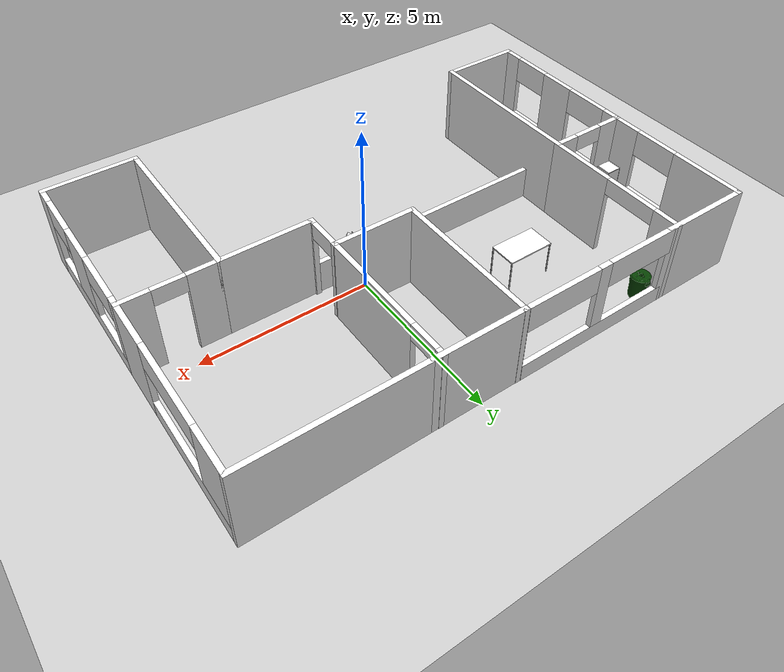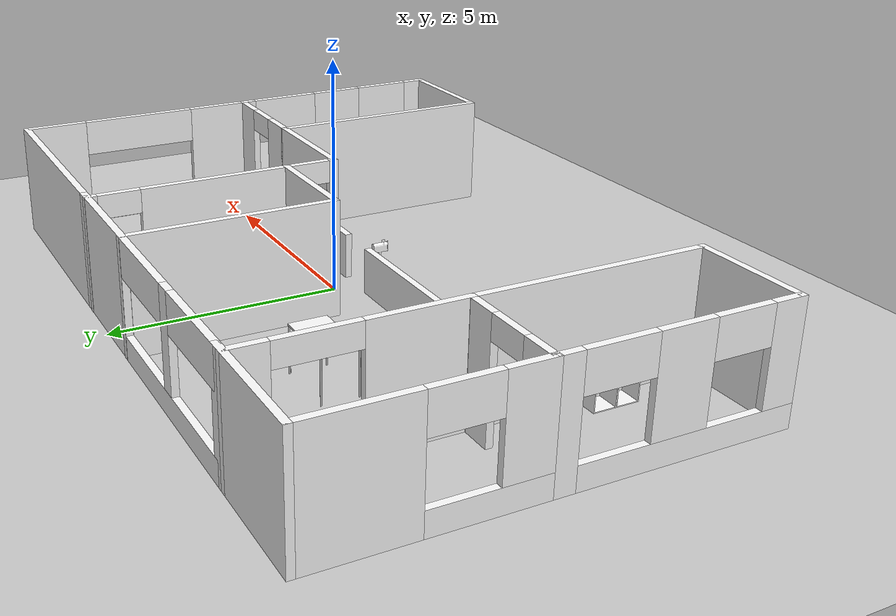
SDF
<?xml version="1.0" ?>
<sdf version="1.10">
  <world name="default">
    <physics name="2ms" type="dart">
      <max_step_size>0.002</max_step_size>
      <real_time_factor>1</real_time_factor>
      <real_time_update_rate>500</real_time_update_rate>
    </physics>

    <plugin filename="gz-sim-physics-system" name="gz::sim::systems::Physics"/>
    <plugin filename="gz-sim-user-commands-system" name="gz::sim::systems::UserCommands"/>
    <plugin filename="gz-sim-scene-broadcaster-system" name="gz::sim::systems::SceneBroadcaster"/>
    <plugin filename="gz-sim-sensors-system" name="gz::sim::systems::Sensors">
      <render_engine>ogre2</render_engine>
    </plugin>
    <plugin filename="gz-sim-imu-system" name="gz::sim::systems::Imu"/>
    <!-- Publishes the contacts of the models with contact sensors, as the cats -->
    <plugin filename="gz-sim-contact-system" name="gz::sim::systems::Contact"/>

    <scene>
      <ambient>0.4 0.4 0.4 1</ambient>
      <background>0.7 0.7 0.7 1</background>
      <shadows>false</shadows>
    </scene>

    <!-- A global light source -->
    <light type="directional" name="sun">
      <cast_shadows>true</cast_shadows>
      <pose>0 0 10 0 0 0</pose>
      <diffuse>0.8 0.8 0.8 1</diffuse>
      <specular>0.2 0.2 0.2 1</specular>
      <attenuation>
        <range>1000</range>
        <constant>0.9</constant>
        <linear>0.01</linear>
        <quadratic>0.001</quadratic>
      </attenuation>
      <direction>-0.5 0.1 -0.9</direction>
    </light>

    <!-- A ground plane -->
    <model name="ground_plane">
      <static>true</static>
      <link name="link">
        <collision name="collision">
          <geometry>
            <plane>
              <normal>0 0 1</normal>
              <size>100 100</size>
            </plane>
          </geometry>
        </collision>
        <visual name="visual">
          <geometry>
            <plane>
              <normal>0 0 1</normal>
              <size>100 100</size>
            </plane>
          </geometry>
          <material>
            <ambient>0.8 0.8 0.8 1</ambient>
            <diffuse>0.8 0.8 0.8 1</diffuse>
            <specular>0.8 0.8 0.8 1</specular>
          </material>
        </visual>
      </link>
    </model>
    <!-- turtlebot3_gazebo's house, edited for Thorp, placed with the robot's start at the origin -->
    <include>
      <uri>model://fun_house</uri>
      <pose>-1.1 -0.4 0 0 0 0</pose>
    </include>
  </world>
</sdf>
